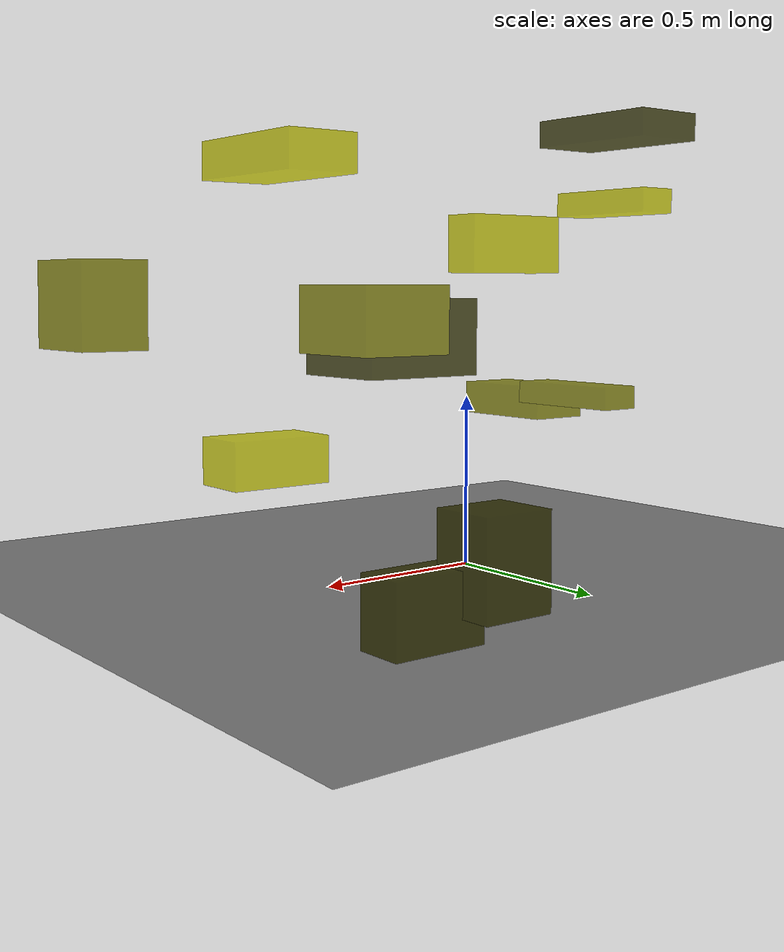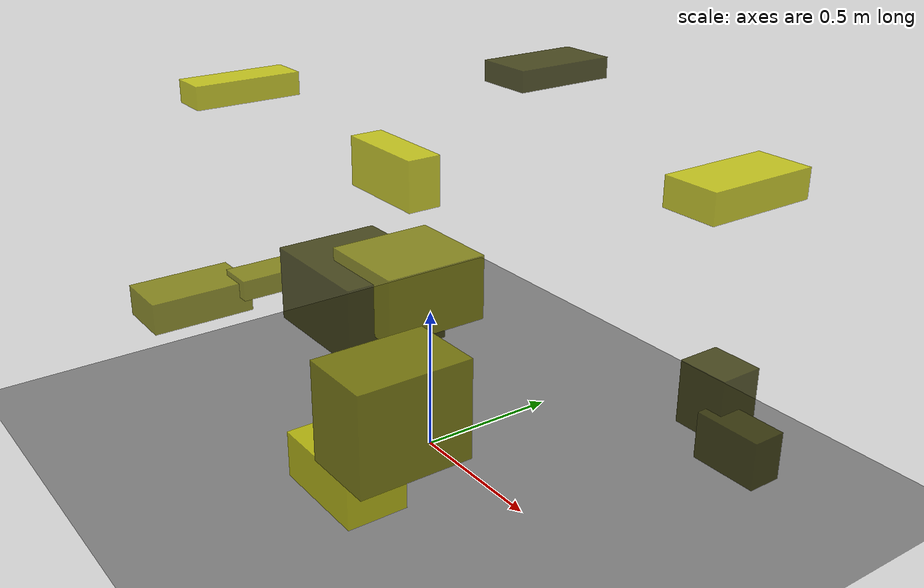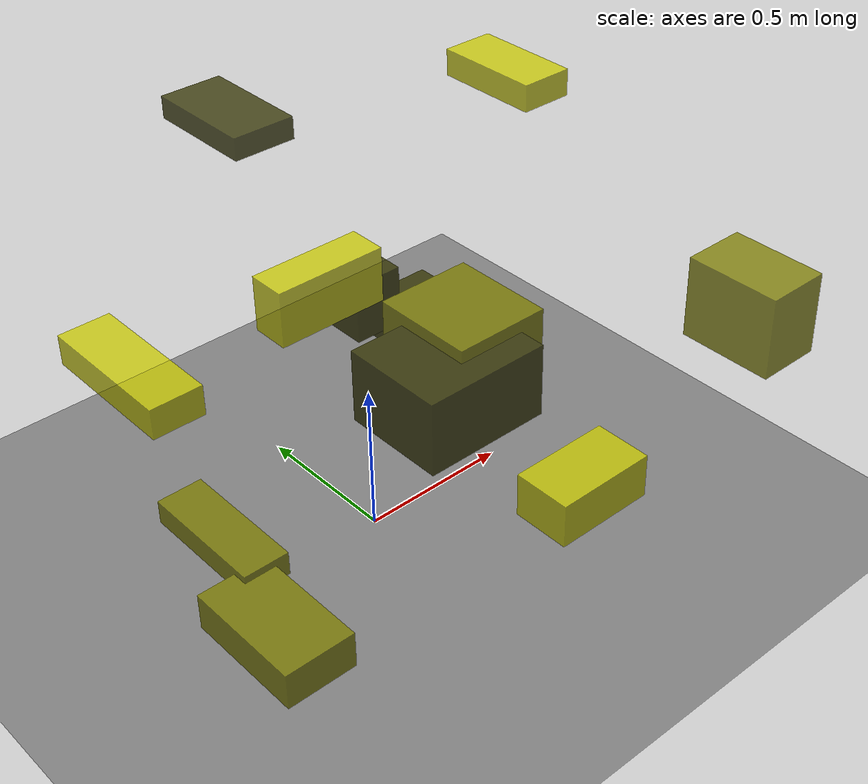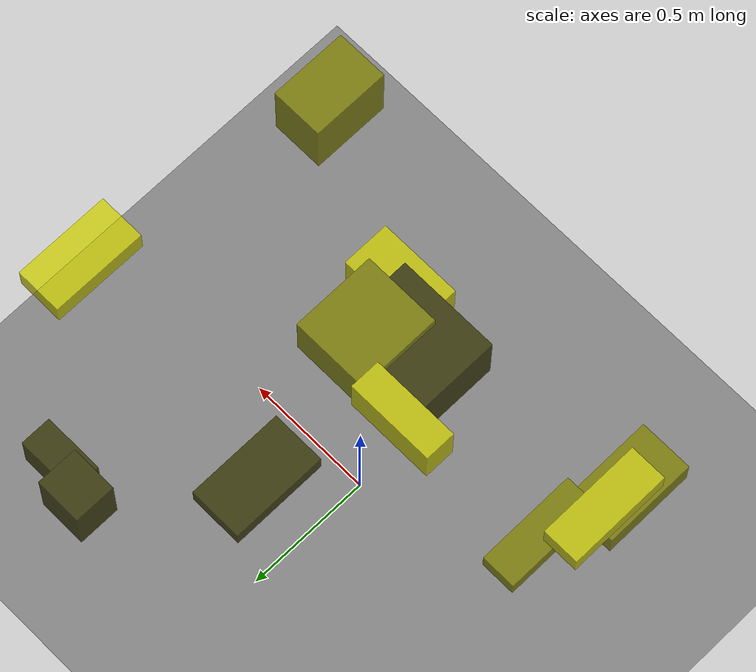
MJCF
<?xml version="1.0"?>
<mujoco model="obstacle_scene">
  <compiler angle="radian" coordinate="local"/>
  <option timestep="0.001" gravity="0 0 -9.81"/>

  <asset>
    <material name="obstacle_mat" rgba="0.8 0.8 0.0 0.8"/>
    <material name="ground_mat" rgba="0.5 0.5 0.5 1"/>
  </asset>

  <worldbody>
    <!-- Ground plane -->
    <geom name="ground" type="plane" size="3 3 0.1" material="ground_mat"/>

    <!-- Obstacles -->
    <body name="obstacle_0" pos="0.744973 0.705204 0.117888">
      <geom name="obs_0" type="box" size="0.124283 0.062627 0.086255" rgba="0.2 0.2 0.0 0.8"/>
    </body>
    <body name="obstacle_1" pos="-0.734123 -0.527941 0.420943">
      <geom name="obs_1" type="box" size="0.105840 0.185102 0.056143" rgba="0.5 0.5 0.0 0.8"/>
    </body>
    <body name="obstacle_2" pos="0.355904 -0.542884 0.283147">
      <geom name="obs_2" type="box" size="0.170412 0.097604 0.075208" rgba="0.8 0.8 0.0 0.8"/>
    </body>
    <body name="obstacle_3" pos="-0.063859 0.516652 1.233878">
      <geom name="obs_3" type="box" size="0.100604 0.180455 0.035383" rgba="0.2 0.2 0.0 0.8"/>
    </body>
    <body name="obstacle_4" pos="0.186865 -0.208512 0.726596">
      <geom name="obs_4" type="box" size="0.154486 0.167206 0.103332" rgba="0.5 0.5 0.0 0.8"/>
    </body>
    <body name="obstacle_5" pos="0.905828 0.374560 1.118208">
      <geom name="obs_5" type="box" size="0.090249 0.184288 0.045820" rgba="0.8 0.8 0.0 0.8"/>
    </body>
    <body name="obstacle_6" pos="0.590393 0.764137 0.214763">
      <geom name="obs_6" type="box" size="0.095519 0.083376 0.117450" rgba="0.2 0.2 0.0 0.8"/>
    </body>
    <body name="obstacle_7" pos="-0.656823 -0.191081 0.461715">
      <geom name="obs_7" type="box" size="0.069378 0.199550 0.036977" rgba="0.5 0.5 0.0 0.8"/>
    </body>
    <body name="obstacle_8" pos="-0.168568 -0.022012 0.952398">
      <geom name="obs_8" type="box" size="0.172498 0.059217 0.085898" rgba="0.8 0.8 0.0 0.8"/>
    </body>
    <body name="obstacle_9" pos="0.054009 -0.292674 0.670219">
      <geom name="obs_9" type="box" size="0.204323 0.168542 0.119207" rgba="0.2 0.2 0.0 0.8"/>
    </body>
    <body name="obstacle_10" pos="0.863147 -0.702443 0.770737">
      <geom name="obs_10" type="box" size="0.103958 0.154502 0.133470" rgba="0.5 0.5 0.0 0.8"/>
    </body>
    <body name="obstacle_11" pos="-0.866669 -0.220670 1.114836">
      <geom name="obs_11" type="box" size="0.070711 0.198279 0.041655" rgba="0.8 0.8 0.0 0.8"/>
    </body>
  </worldbody>
</mujoco>
